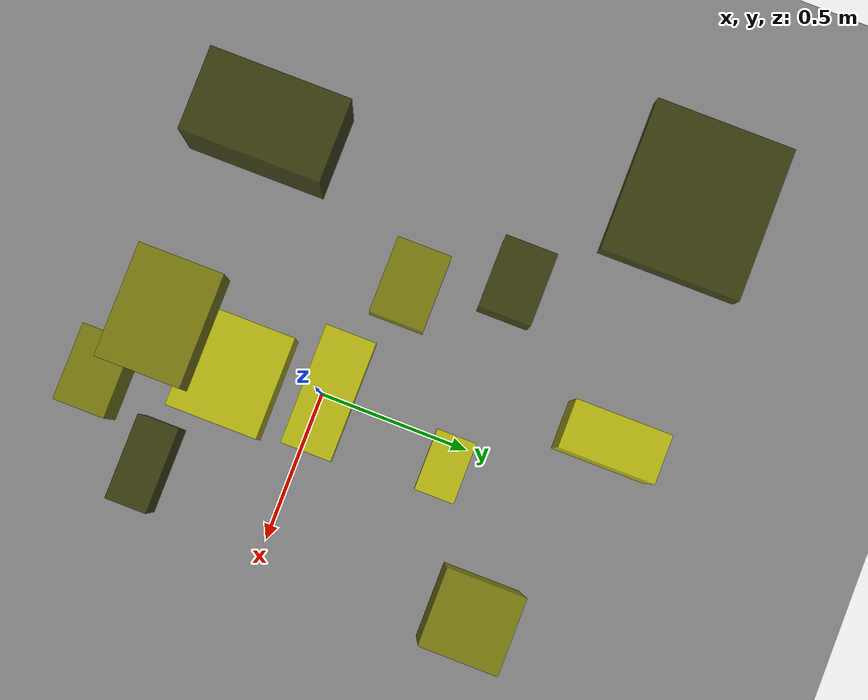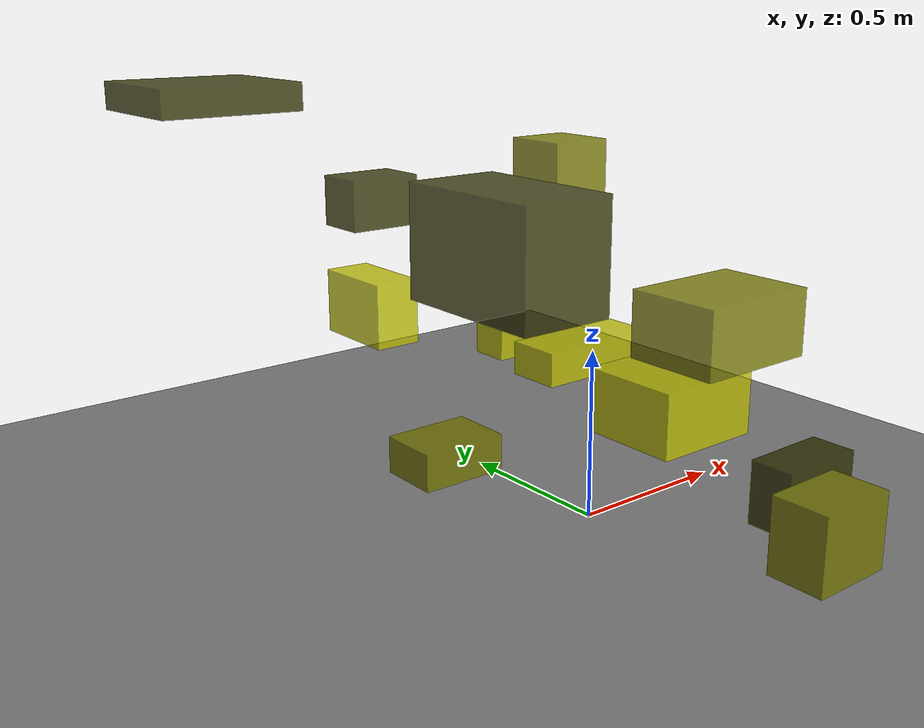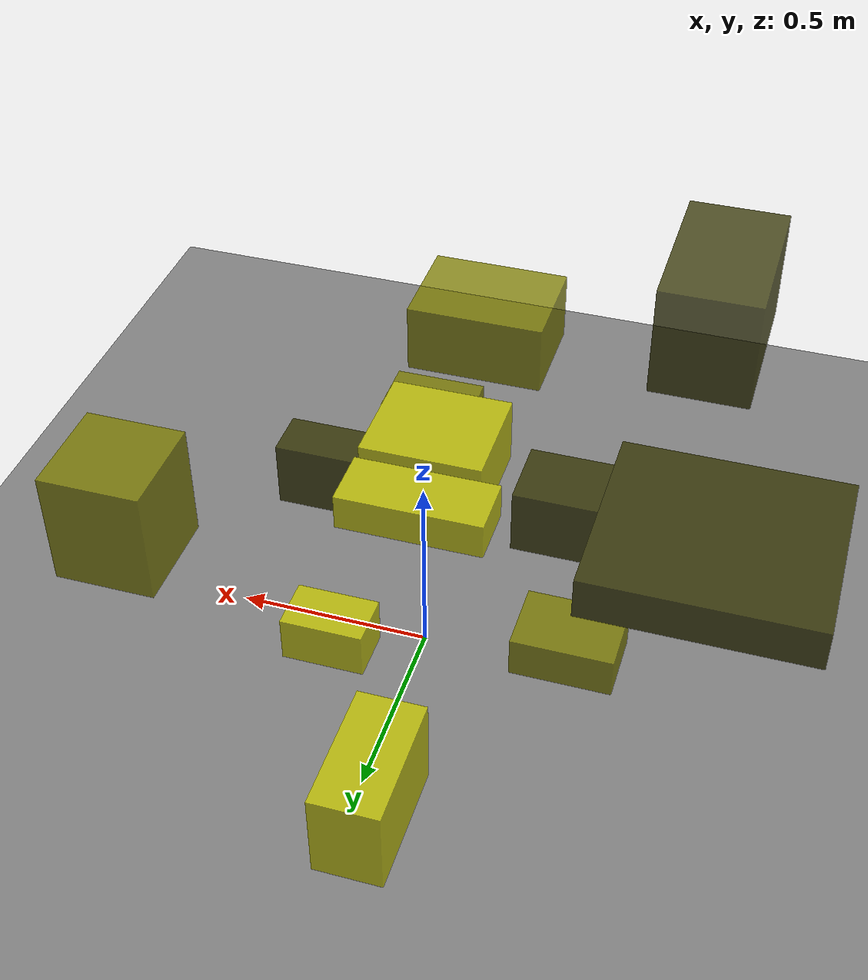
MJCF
<?xml version="1.0"?>
<mujoco model="obstacle_scene">
  <compiler angle="radian" coordinate="local"/>
  <option timestep="0.001" gravity="0 0 -9.81"/>

  <asset>
    <material name="obstacle_mat" rgba="0.8 0.8 0.0 0.8"/>
    <material name="ground_mat" rgba="0.5 0.5 0.5 1"/>
  </asset>

  <worldbody>
    <!-- Ground plane -->
    <geom name="ground" type="plane" size="3 3 0.1" material="ground_mat"/>

    <!-- Obstacles -->
    <body name="obstacle_0" pos="-0.443826 0.426365 0.919394">
      <geom name="obs_0" type="box" size="0.102029 0.073307 0.068840" rgba="0.2 0.2 0.0 0.8"/>
    </body>
    <body name="obstacle_1" pos="0.435988 0.630480 0.875182">
      <geom name="obs_1" type="box" size="0.107798 0.110835 0.127602" rgba="0.5 0.5 0.0 0.8"/>
    </body>
    <body name="obstacle_2" pos="-0.163412 0.867276 0.479257">
      <geom name="obs_2" type="box" size="0.075339 0.147910 0.104566" rgba="0.8 0.8 0.0 0.8"/>
    </body>
    <body name="obstacle_3" pos="-0.603244 -0.348357 0.934737">
      <geom name="obs_3" type="box" size="0.117613 0.197986 0.134426" rgba="0.2 0.2 0.0 0.8"/>
    </body>
    <body name="obstacle_4" pos="-0.406795 0.146368 0.252335">
      <geom name="obs_4" type="box" size="0.124380 0.088734 0.052418" rgba="0.5 0.5 0.0 0.8"/>
    </body>
    <body name="obstacle_5" pos="0.078370 0.439308 0.437202">
      <geom name="obs_5" type="box" size="0.094814 0.060624 0.055309" rgba="0.8 0.8 0.0 0.8"/>
    </body>
    <body name="obstacle_6" pos="0.405358 -0.432759 0.127809">
      <geom name="obs_6" type="box" size="0.139825 0.068068 0.095735" rgba="0.2 0.2 0.0 0.8"/>
    </body>
    <body name="obstacle_7" pos="-0.024890 -0.461009 0.690798">
      <geom name="obs_7" type="box" size="0.170240 0.127092 0.087305" rgba="0.5 0.5 0.0 0.8"/>
    </body>
    <body name="obstacle_8" pos="0.045168 -0.250388 0.415210">
      <geom name="obs_8" type="box" size="0.158932 0.142529 0.089420" rgba="0.8 0.8 0.0 0.8"/>
    </body>
    <body name="obstacle_9" pos="-0.761551 0.764256 1.195209">
      <geom name="obs_9" type="box" size="0.203883 0.183791 0.039333" rgba="0.2 0.2 0.0 0.8"/>
    </body>
    <body name="obstacle_10" pos="0.189775 -0.673861 0.144902">
      <geom name="obs_10" type="box" size="0.126404 0.084231 0.110970" rgba="0.5 0.5 0.0 0.8"/>
    </body>
    <body name="obstacle_11" pos="0.001086 0.042860 0.488985">
      <geom name="obs_11" type="box" size="0.184741 0.078002 0.047037" rgba="0.8 0.8 0.0 0.8"/>
    </body>
  </worldbody>
</mujoco>
